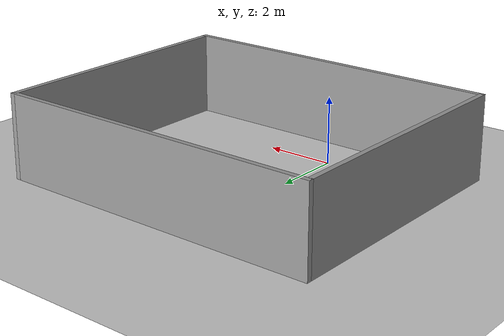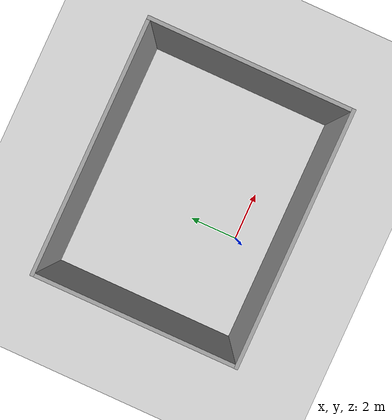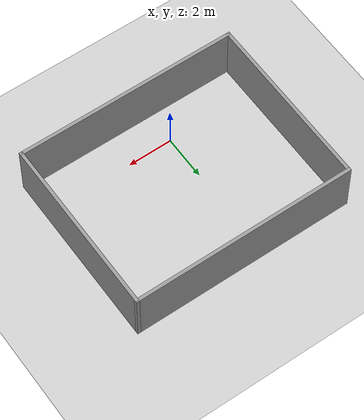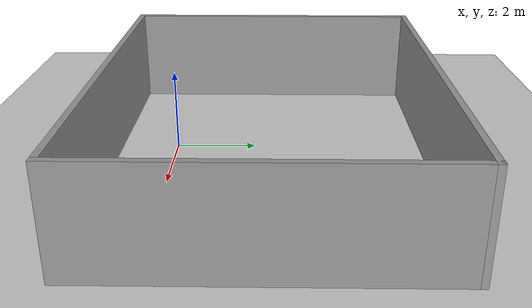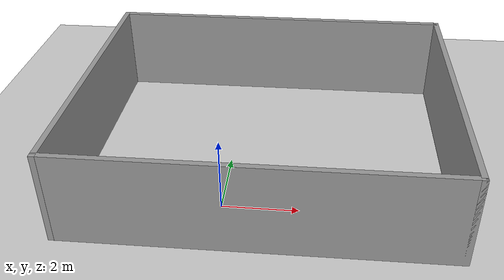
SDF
<?xml version="1.0" ?>
<sdf version="1.4">
  <world name="default">
    <include>
      <uri>model://sun</uri>
    </include>
    <!-- A ground plane -->
    <include>
      <uri>model://ground_plane</uri>
    </include>
    <include>
      <uri>model://asphalt_plane</uri>
    </include>
    <physics name='default_physics' default='0' type='ode'>
      <gravity>0 0 -9.8066</gravity>
      <ode>
        <solver>
          <type>quick</type>
          <iters>10</iters>
          <sor>1.3</sor>
          <use_dynamic_moi_rescaling>0</use_dynamic_moi_rescaling>
        </solver>
        <constraints>
          <cfm>0</cfm>
          <erp>0.2</erp>
          <contact_max_correcting_vel>100</contact_max_correcting_vel>
          <contact_surface_layer>0.001</contact_surface_layer>
        </constraints>
      </ode>
      <max_step_size>0.004</max_step_size>
      <real_time_factor>1</real_time_factor>
      <real_time_update_rate>250</real_time_update_rate>
      <magnetic_field>6.0e-6 2.3e-5 -4.2e-5</magnetic_field>
    </physics>
    <model name='walls'>
    <pose>1.00638 2.41648 0 0 -0 0</pose>
    <link name='Wall_6'>
      <collision name='Wall_6_Collision'>
        <geometry>
          <box>
            <size>10 0.15 2.5</size>
          </box>
        </geometry>
        <pose>0 0 1.25 0 -0 0</pose>
      </collision>
      <visual name='Wall_6_Visual'>
        <pose>0 0 1.25 0 -0 0</pose>
        <geometry>
          <box>
            <size>10 0.15 2.5</size>
          </box>
        </geometry>
        <material>
          <script>
            <uri>file://media/materials/scripts/gazebo.material</uri>
            <name>Gazebo/Grey</name>
          </script>
          <ambient>1 1 1 1</ambient>
        </material>
        <meta>
          <layer>0</layer>
        </meta>
      </visual>
      <pose>0 -3.925 0 0 -0 0</pose>
    </link>
    <link name='Wall_7'>
      <collision name='Wall_7_Collision'>
        <geometry>
          <box>
            <size>8 0.15 2.5</size>
          </box>
        </geometry>
        <pose>0 0 1.25 0 -0 0</pose>
      </collision>
      <visual name='Wall_7_Visual'>
        <pose>0 0 1.25 0 -0 0</pose>
        <geometry>
          <box>
            <size>8 0.15 2.5</size>
          </box>
        </geometry>
        <material>
          <script>
            <uri>file://media/materials/scripts/gazebo.material</uri>
            <name>Gazebo/Grey</name>
          </script>
          <ambient>1 1 1 1</ambient>
        </material>
        <meta>
          <layer>0</layer>
        </meta>
      </visual>
      <pose>4.925 -0 0 0 -0 1.5708</pose>
    </link>
    <link name='Wall_8'>
      <collision name='Wall_8_Collision'>
        <geometry>
          <box>
            <size>10 0.15 2.5</size>
          </box>
        </geometry>
        <pose>0 0 1.25 0 -0 0</pose>
      </collision>
      <visual name='Wall_8_Visual'>
        <pose>0 0 1.25 0 -0 0</pose>
        <geometry>
          <box>
            <size>10 0.15 2.5</size>
          </box>
        </geometry>
        <material>
          <script>
            <uri>file://media/materials/scripts/gazebo.material</uri>
            <name>Gazebo/Grey</name>
          </script>
          <ambient>1 1 1 1</ambient>
        </material>
        <meta>
          <layer>0</layer>
        </meta>
      </visual>
      <pose>0 3.925 0 0 -0 3.14159</pose>
    </link>
    <link name='Wall_9'>
      <collision name='Wall_9_Collision'>
        <geometry>
          <box>
            <size>8 0.15 2.5</size>
          </box>
        </geometry>
        <pose>0 0 1.25 0 -0 0</pose>
      </collision>
      <visual name='Wall_9_Visual'>
        <pose>0 0 1.25 0 -0 0</pose>
        <geometry>
          <box>
            <size>8 0.15 2.5</size>
          </box>
        </geometry>
        <material>
          <script>
            <uri>file://media/materials/scripts/gazebo.material</uri>
            <name>Gazebo/Grey</name>
          </script>
          <ambient>1 1 1 1</ambient>
        </material>
        <meta>
          <layer>0</layer>
        </meta>
      </visual>
      <pose>-4.925 -0 0 0 -0 -1.5708</pose>
    </link>
    <static>1</static>
  </model>
    <light type="directional" name="my_light">
      <pose>0 0 30 0 0 0</pose>
      <diffuse>.5 .5 .5 1</diffuse>
      <specular>.1 .1 .1 1</specular>
      <attenuation>
        <range>200</range>
      </attenuation>
      <direction>0 0 -1</direction>
      <cast_shadows>false</cast_shadows>
    </light>
  </world>
</sdf>
